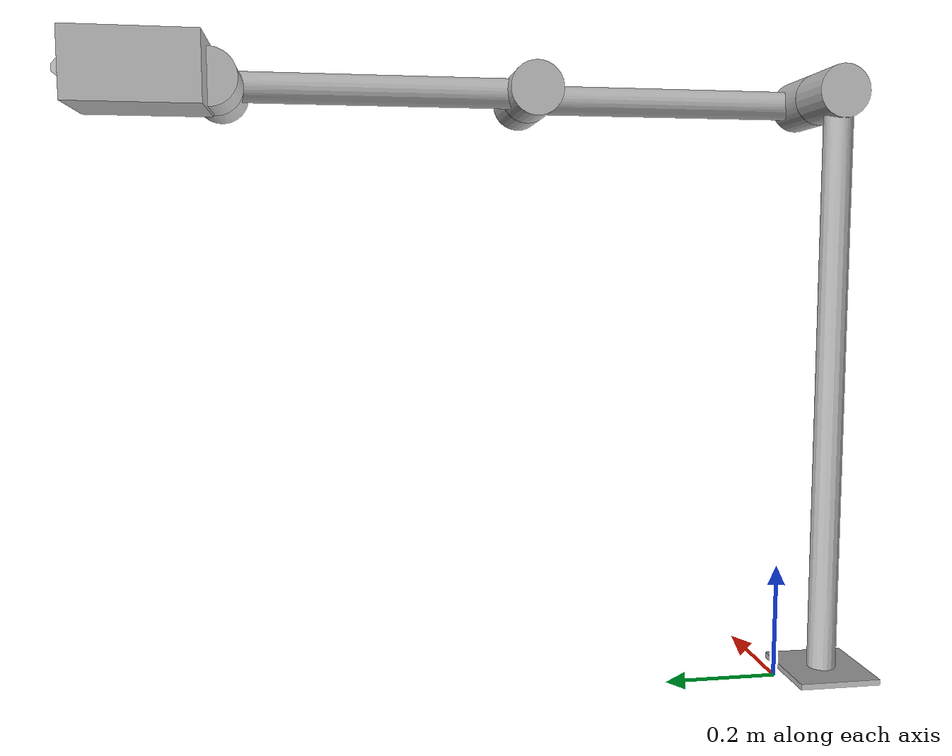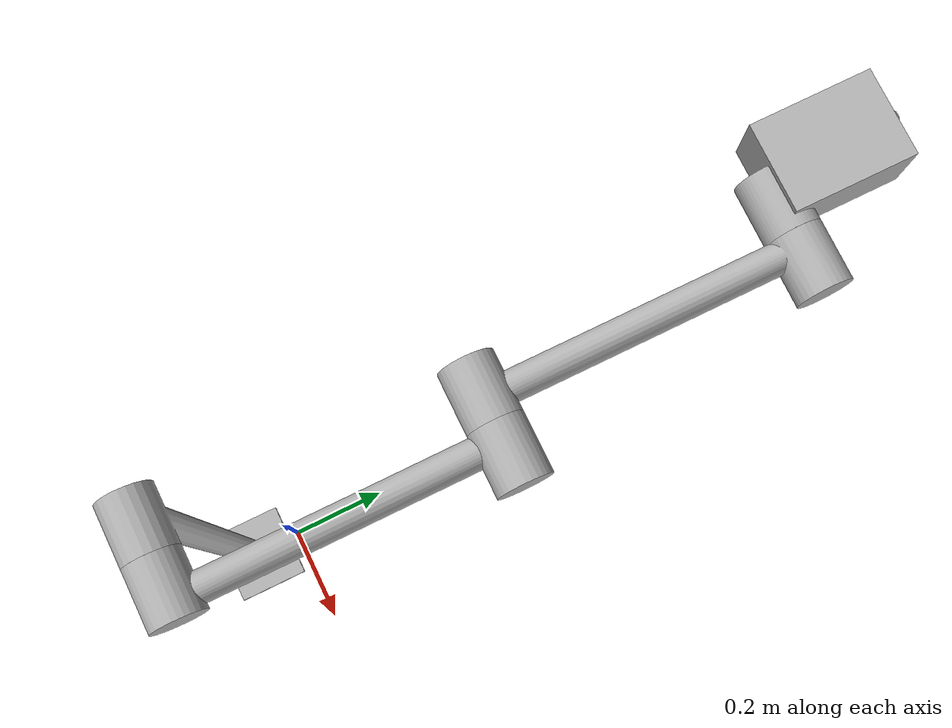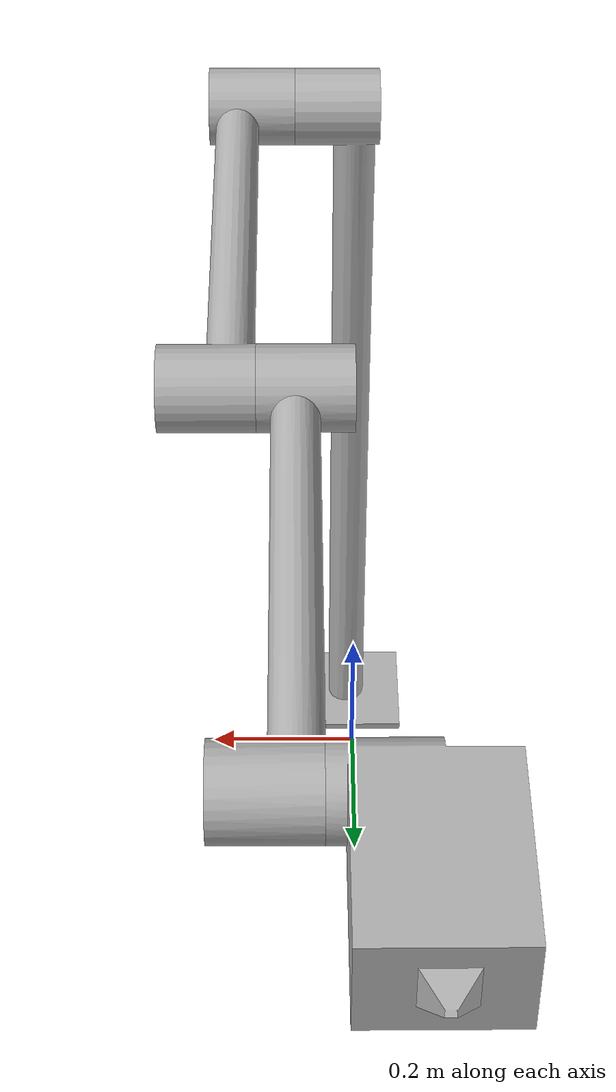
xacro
<?xml version="1.0" ?>
<robot name="robot_arm_iteration_3" xmlns:xacro="http://www.ros.org/wiki/xacro">

<xacro:include filename="$(find robot_arm_iteration_3_description)/urdf/materials.xacro" />
<xacro:include filename="$(find robot_arm_iteration_3_description)/urdf/robot_arm_iteration_3.trans" />
<xacro:include filename="$(find robot_arm_iteration_3_description)/urdf/robot_arm_iteration_3.gazebo" />
<link name="world" />

<link name="base_link">
  <inertial>
    <origin rpy="0 0 0" xyz="0.007500000209536871 -0.0925000000000005 0.004999999999998648"/>
    <mass value="1.7642874999999998"/>
    <inertia ixx="0.003106" ixy="0.0" ixz="0.0" iyy="0.003547" iyz="0.0" izz="0.006623"/>
  </inertial>
  <visual>
    <origin rpy="0 0 0" xyz="0 0 0"/>
    <geometry>
      <mesh filename="package://robot_arm_iteration_3_description/meshes/base_link.stl" scale="0.001 0.001 0.001"/>
    </geometry>
    <material name="silver"/>
  </visual>
  <collision>
    <origin rpy="0 0 0" xyz="0 0 0"/>
    <geometry>
      <mesh filename="package://robot_arm_iteration_3_description/meshes/base_link.stl" scale="0.001 0.001 0.001"/>
    </geometry>
  </collision>
</link>

<link name="end_effector_1_1">
  <inertial>
    <origin rpy="0 0 0" xyz="-0.08571430453879789 0.08720731856019903 0.0031948207901359993"/>
    <mass value="26.948240250780884"/>
    <inertia ixx="0.13967" ixy="0.013482" ixz="0.000447" iyy="0.076905" iyz="-0.001001" izz="0.166662"/>
  </inertial>
  <visual>
    <origin rpy="0 0 0" xyz="-0.055139 -0.949297 -1.013464"/>
    <geometry>
      <mesh filename="package://robot_arm_iteration_3_description/meshes/end_effector_1_1.stl" scale="0.001 0.001 0.001"/>
    </geometry>
    <material name="silver"/>
  </visual>
  <collision>
    <origin rpy="0 0 0" xyz="-0.055139 -0.949297 -1.013464"/>
    <geometry>
      <mesh filename="package://robot_arm_iteration_3_description/meshes/end_effector_1_1.stl" scale="0.001 0.001 0.001"/>
    </geometry>
  </collision>
</link>

<link name="lnk3_1_1_1">
  <inertial>
    <origin rpy="0 0 0" xyz="-0.03488195277495294 0.26018452863158753 -0.002882210200743529"/>
    <mass value="16.682100082084894"/>
    <inertia ixx="0.79232" ixy="-0.047568" ixz="0.000675" iyy="0.019209" iyz="0.008857" izz="0.799054"/>
  </inertial>
  <visual>
    <origin rpy="0 0 0" xyz="-0.11851 -0.429073 -1.020351"/>
    <geometry>
      <mesh filename="package://robot_arm_iteration_3_description/meshes/lnk3_1_1_1.stl" scale="0.001 0.001 0.001"/>
    </geometry>
    <material name="silver"/>
  </visual>
  <collision>
    <origin rpy="0 0 0" xyz="-0.11851 -0.429073 -1.020351"/>
    <geometry>
      <mesh filename="package://robot_arm_iteration_3_description/meshes/lnk3_1_1_1.stl" scale="0.001 0.001 0.001"/>
    </geometry>
  </collision>
</link>

<link name="lnk2_1_1_1">
  <inertial>
    <origin rpy="0 0 0" xyz="0.06876889930744022 0.2596956511187459 -0.0017133814057339602"/>
    <mass value="16.664861094299134"/>
    <inertia ixx="0.789332" ixy="-0.051795" ixz="0.000137" iyy="0.019516" iyz="0.002107" izz="0.796578"/>
  </inertial>
  <visual>
    <origin rpy="0 0 0" xyz="-0.078576 0.090356 -1.021992"/>
    <geometry>
      <mesh filename="package://robot_arm_iteration_3_description/meshes/lnk2_1_1_1.stl" scale="0.001 0.001 0.001"/>
    </geometry>
    <material name="silver"/>
  </visual>
  <collision>
    <origin rpy="0 0 0" xyz="-0.078576 0.090356 -1.021992"/>
    <geometry>
      <mesh filename="package://robot_arm_iteration_3_description/meshes/lnk2_1_1_1.stl" scale="0.001 0.001 0.001"/>
    </geometry>
  </collision>
</link>

<link name="lnk1_1_1_1">
  <inertial>
    <origin rpy="0 0 0" xyz="0.005281764986251696 0.000530910748004626 0.6166430322444159"/>
    <mass value="19.92746069172297"/>
    <inertia ixx="2.217196" ixy="-0.00017" ixz="-0.041611" iyy="2.220469" iyz="-0.004188" izz="0.013039"/>
  </inertial>
  <visual>
    <origin rpy="0 0 0" xyz="-0.0075 0.0925 -0.01"/>
    <geometry>
      <mesh filename="package://robot_arm_iteration_3_description/meshes/lnk1_1_1_1.stl" scale="0.001 0.001 0.001"/>
    </geometry>
    <material name="silver"/>
  </visual>
  <collision>
    <origin rpy="0 0 0" xyz="-0.0075 0.0925 -0.01"/>
    <geometry>
      <mesh filename="package://robot_arm_iteration_3_description/meshes/lnk1_1_1_1.stl" scale="0.001 0.001 0.001"/>
    </geometry>
  </collision>
</link>

<link name="primatic_limb_v1_1">
  <inertial>
    <origin rpy="0 0 0" xyz="-4.017224986274659e-07 -3.58057296034886e-07 1.2292912021649727e-08"/>
    <mass value="0.5548838024402971"/>
    <inertia ixx="0.000494" ixy="0.0" ixz="0.0" iyy="6.2e-05" iyz="0.0" izz="0.000494"/>
  </inertial>
  <visual>
    <origin rpy="0 0 0" xyz="0.038314 -1.100238 -1.02"/>
    <geometry>
      <mesh filename="package://robot_arm_iteration_3_description/meshes/primatic_limb_v1_1.stl" scale="0.001 0.001 0.001"/>
    </geometry>
    <material name="silver"/>
  </visual>
  <collision>
    <origin rpy="0 0 0" xyz="0.038314 -1.100238 -1.02"/>
    <geometry>
      <mesh filename="package://robot_arm_iteration_3_description/meshes/primatic_limb_v1_1.stl" scale="0.001 0.001 0.001"/>
    </geometry>
  </collision>
</link>

<link name="sensor_module_v1_1">
  <inertial>
    <origin rpy="0 0 0" xyz="-4.0184163538348194e-07 0.00685678479984464 1.2292914020051171e-08"/>
    <mass value="0.17584000000000002"/>
    <inertia ixx="2.9e-05" ixy="-0.0" ixz="0.0" iyy="4.9e-05" iyz="0.0" izz="2.9e-05"/>
  </inertial>
  <visual>
    <origin rpy="0 0 0" xyz="0.038314 -1.150238 -1.02"/>
    <geometry>
      <mesh filename="package://robot_arm_iteration_3_description/meshes/sensor_module_v1_1.stl" scale="0.001 0.001 0.001"/>
    </geometry>
    <material name="silver"/>
  </visual>
  <collision>
    <origin rpy="0 0 0" xyz="0.038314 -1.150238 -1.02"/>
    <geometry>
      <mesh filename="package://robot_arm_iteration_3_description/meshes/sensor_module_v1_1.stl" scale="0.001 0.001 0.001"/>
    </geometry>
  </collision>
</link>

<joint name="Rev10" type="continuous">
  <origin rpy="0 0 0" xyz="-0.063371 0.520224 -0.006887"/>
  <parent link="lnk3_1_1_1"/>
  <child link="end_effector_1_1"/>
  <axis xyz="1.0 0.0 0.0"/>
</joint>

<joint name="Rev11" type="continuous">
  <origin rpy="0 0 0" xyz="0.039934 0.519429 -0.001641"/>
  <parent link="lnk2_1_1_1"/>
  <child link="lnk3_1_1_1"/>
  <axis xyz="1.0 -0.0 0.0"/>
</joint>

<joint name="Rev12" type="continuous">
  <origin rpy="0 0 0" xyz="0.071076 0.002144 1.011992"/>
  <parent link="lnk1_1_1_1"/>
  <child link="lnk2_1_1_1"/>
  <axis xyz="1.0 -0.0 0.0"/>
</joint>

<joint name="Rev13" type="continuous">
  <origin rpy="0 0 0" xyz="0.0075 -0.0925 0.01"/>
  <parent link="base_link"/>
  <child link="lnk1_1_1_1"/>
  <axis xyz="0.0 0.0 1.0"/>
</joint>

<joint name="Slider14" type="prismatic">
  <origin rpy="0 0 0" xyz="-0.093453 0.150941 0.006536"/>
  <parent link="end_effector_1_1"/>
  <child link="primatic_limb_v1_1"/>
  <axis xyz="0.0 -1.0 0.0"/>
  <limit effort="100" lower="-0.1" upper="0.0" velocity="100"/>
</joint>

<joint name="Rev15" type="continuous">
  <origin rpy="0 0 0" xyz="0.0 0.05 0.0"/>
  <parent link="primatic_limb_v1_1"/>
  <child link="sensor_module_v1_1"/>
  <axis xyz="-0.0 1.0 -0.0"/>
</joint>
<joint name="fixedtoground" type="fixed">
  <parent link="world"/>
  <child link="base_link"/>
</joint>
</robot>

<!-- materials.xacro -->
<robot name="robot_arm_iteration_3" xmlns:xacro="http://www.ros.org/wiki/xacro" >

<material name="silver">
  <color rgba="0.700 0.700 0.700 1.000"/>
</material>

</robot>

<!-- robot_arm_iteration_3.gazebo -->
<robot name="robot_arm_iteration_3" xmlns:xacro="http://www.ros.org/wiki/xacro" >

<xacro:property name="body_color" value="Gazebo/Silver" />

<gazebo>
  <plugin filename="libgazebo_ros_control.so" name="gazebo_ros_control">
  <robotNamespace>/robot_arm_iteration_3</robotNamespace>
  </plugin>
</gazebo>
<gazebo reference="base_link">
  <material>${body_color}</material>
  <mu1>0.2</mu1>
  <mu2>0.2</mu2>
  <selfCollide>true</selfCollide>
  <gravity>true</gravity>
</gazebo>

<gazebo reference="end_effector_1_1">
  <material>${body_color}</material>
  <mu1>0.2</mu1>
  <mu2>0.2</mu2>
  <selfCollide>true</selfCollide>
</gazebo>

<gazebo reference="lnk3_1_1_1">
  <material>${body_color}</material>
  <mu1>0.2</mu1>
  <mu2>0.2</mu2>
  <selfCollide>true</selfCollide>
</gazebo>

<gazebo reference="lnk2_1_1_1">
  <material>${body_color}</material>
  <mu1>0.2</mu1>
  <mu2>0.2</mu2>
  <selfCollide>true</selfCollide>
</gazebo>

<gazebo reference="lnk1_1_1_1">
  <material>${body_color}</material>
  <mu1>0.2</mu1>
  <mu2>0.2</mu2>
  <selfCollide>true</selfCollide>
</gazebo>

<gazebo reference="primatic_limb_v1_1">
  <material>${body_color}</material>
  <mu1>0.2</mu1>
  <mu2>0.2</mu2>
  <selfCollide>true</selfCollide>
</gazebo>

<gazebo reference="sensor_module_v1_1">
  <material>${body_color}</material>
  <mu1>0.2</mu1>
  <mu2>0.2</mu2>
  <selfCollide>true</selfCollide>
</gazebo>

</robot>
